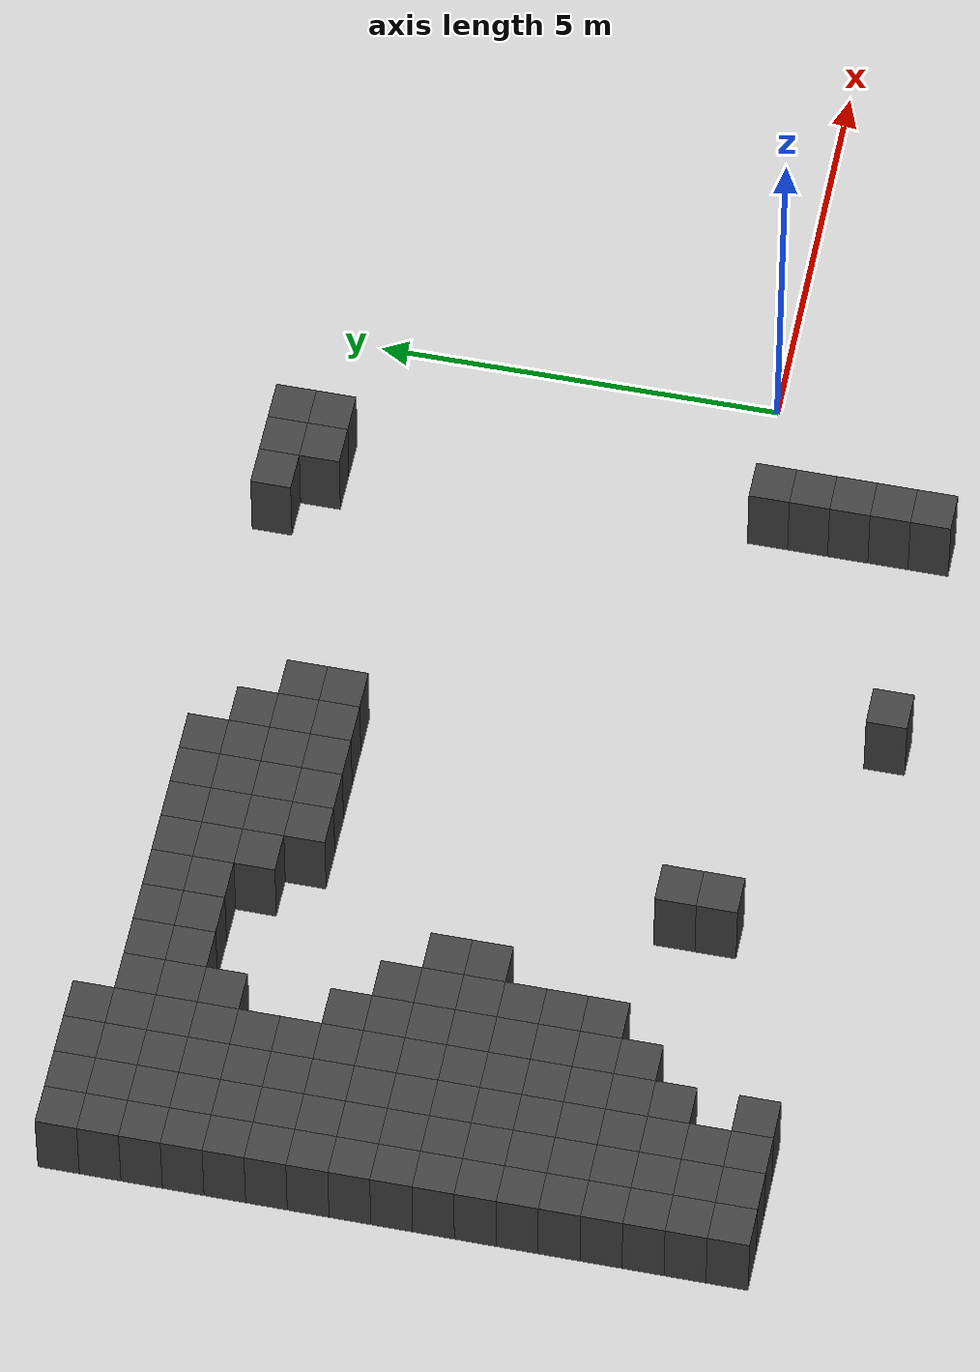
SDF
<sdf version="1.7">
 <world name="map_8658">
  <model name="ground_plane">
   <static>true</static>
   <link name="link">
    <collision name="collision">
     <geometry><plane><normal>0 0 1</normal><size>200 200</size></plane></geometry>
    </collision>
    <visual name="visual">
     <geometry><plane><normal>0 0 1</normal><size>200 200</size></plane></geometry>
     <material><ambient>0.8 0.8 0.8 1</ambient><diffuse>0.8 0.8 0.8 1</diffuse></material>
    </visual>
   </link>
  </model>
  <model name="maze_environment">
   <static>true</static>
   <link name="wall_265">
    <pose>-12.250 6.250 0.500 0 0 0</pose>
    <collision name="col"><geometry><box><size>0.5 0.5 1.0</size></box></geometry></collision>
    <visual name="vis">
     <geometry><box><size>0.5 0.5 1.0</size></box></geometry>
     <material><ambient>0.15 0.15 0.15 1</ambient><diffuse>0.25 0.25 0.25 1</diffuse></material>
    </visual>
   </link>
   <link name="wall_266">
    <pose>-11.750 6.250 0.500 0 0 0</pose>
    <collision name="col"><geometry><box><size>0.5 0.5 1.0</size></box></geometry></collision>
    <visual name="vis">
     <geometry><box><size>0.5 0.5 1.0</size></box></geometry>
     <material><ambient>0.15 0.15 0.15 1</ambient><diffuse>0.25 0.25 0.25 1</diffuse></material>
    </visual>
   </link>
   <link name="wall_267">
    <pose>-11.250 6.250 0.500 0 0 0</pose>
    <collision name="col"><geometry><box><size>0.5 0.5 1.0</size></box></geometry></collision>
    <visual name="vis">
     <geometry><box><size>0.5 0.5 1.0</size></box></geometry>
     <material><ambient>0.15 0.15 0.15 1</ambient><diffuse>0.25 0.25 0.25 1</diffuse></material>
    </visual>
   </link>
   <link name="wall_268">
    <pose>-10.750 6.250 0.500 0 0 0</pose>
    <collision name="col"><geometry><box><size>0.5 0.5 1.0</size></box></geometry></collision>
    <visual name="vis">
     <geometry><box><size>0.5 0.5 1.0</size></box></geometry>
     <material><ambient>0.15 0.15 0.15 1</ambient><diffuse>0.25 0.25 0.25 1</diffuse></material>
    </visual>
   </link>
   <link name="wall_285">
    <pose>-12.250 5.750 0.500 0 0 0</pose>
    <collision name="col"><geometry><box><size>0.5 0.5 1.0</size></box></geometry></collision>
    <visual name="vis">
     <geometry><box><size>0.5 0.5 1.0</size></box></geometry>
     <material><ambient>0.15 0.15 0.15 1</ambient><diffuse>0.25 0.25 0.25 1</diffuse></material>
    </visual>
   </link>
   <link name="wall_286">
    <pose>-11.750 5.750 0.500 0 0 0</pose>
    <collision name="col"><geometry><box><size>0.5 0.5 1.0</size></box></geometry></collision>
    <visual name="vis">
     <geometry><box><size>0.5 0.5 1.0</size></box></geometry>
     <material><ambient>0.15 0.15 0.15 1</ambient><diffuse>0.25 0.25 0.25 1</diffuse></material>
    </visual>
   </link>
   <link name="wall_287">
    <pose>-11.250 5.750 0.500 0 0 0</pose>
    <collision name="col"><geometry><box><size>0.5 0.5 1.0</size></box></geometry></collision>
    <visual name="vis">
     <geometry><box><size>0.5 0.5 1.0</size></box></geometry>
     <material><ambient>0.15 0.15 0.15 1</ambient><diffuse>0.25 0.25 0.25 1</diffuse></material>
    </visual>
   </link>
   <link name="wall_288">
    <pose>-10.750 5.750 0.500 0 0 0</pose>
    <collision name="col"><geometry><box><size>0.5 0.5 1.0</size></box></geometry></collision>
    <visual name="vis">
     <geometry><box><size>0.5 0.5 1.0</size></box></geometry>
     <material><ambient>0.15 0.15 0.15 1</ambient><diffuse>0.25 0.25 0.25 1</diffuse></material>
    </visual>
   </link>
   <link name="wall_289">
    <pose>-10.250 5.750 0.500 0 0 0</pose>
    <collision name="col"><geometry><box><size>0.5 0.5 1.0</size></box></geometry></collision>
    <visual name="vis">
     <geometry><box><size>0.5 0.5 1.0</size></box></geometry>
     <material><ambient>0.15 0.15 0.15 1</ambient><diffuse>0.25 0.25 0.25 1</diffuse></material>
    </visual>
   </link>
   <link name="wall_290">
    <pose>-9.750 5.750 0.500 0 0 0</pose>
    <collision name="col"><geometry><box><size>0.5 0.5 1.0</size></box></geometry></collision>
    <visual name="vis">
     <geometry><box><size>0.5 0.5 1.0</size></box></geometry>
     <material><ambient>0.15 0.15 0.15 1</ambient><diffuse>0.25 0.25 0.25 1</diffuse></material>
    </visual>
   </link>
   <link name="wall_291">
    <pose>-9.250 5.750 0.500 0 0 0</pose>
    <collision name="col"><geometry><box><size>0.5 0.5 1.0</size></box></geometry></collision>
    <visual name="vis">
     <geometry><box><size>0.5 0.5 1.0</size></box></geometry>
     <material><ambient>0.15 0.15 0.15 1</ambient><diffuse>0.25 0.25 0.25 1</diffuse></material>
    </visual>
   </link>
   <link name="wall_292">
    <pose>-8.750 5.750 0.500 0 0 0</pose>
    <collision name="col"><geometry><box><size>0.5 0.5 1.0</size></box></geometry></collision>
    <visual name="vis">
     <geometry><box><size>0.5 0.5 1.0</size></box></geometry>
     <material><ambient>0.15 0.15 0.15 1</ambient><diffuse>0.25 0.25 0.25 1</diffuse></material>
    </visual>
   </link>
   <link name="wall_293">
    <pose>-8.250 5.750 0.500 0 0 0</pose>
    <collision name="col"><geometry><box><size>0.5 0.5 1.0</size></box></geometry></collision>
    <visual name="vis">
     <geometry><box><size>0.5 0.5 1.0</size></box></geometry>
     <material><ambient>0.15 0.15 0.15 1</ambient><diffuse>0.25 0.25 0.25 1</diffuse></material>
    </visual>
   </link>
   <link name="wall_294">
    <pose>-7.750 5.750 0.500 0 0 0</pose>
    <collision name="col"><geometry><box><size>0.5 0.5 1.0</size></box></geometry></collision>
    <visual name="vis">
     <geometry><box><size>0.5 0.5 1.0</size></box></geometry>
     <material><ambient>0.15 0.15 0.15 1</ambient><diffuse>0.25 0.25 0.25 1</diffuse></material>
    </visual>
   </link>
   <link name="wall_295">
    <pose>-7.250 5.750 0.500 0 0 0</pose>
    <collision name="col"><geometry><box><size>0.5 0.5 1.0</size></box></geometry></collision>
    <visual name="vis">
     <geometry><box><size>0.5 0.5 1.0</size></box></geometry>
     <material><ambient>0.15 0.15 0.15 1</ambient><diffuse>0.25 0.25 0.25 1</diffuse></material>
    </visual>
   </link>
   <link name="wall_296">
    <pose>-6.750 5.750 0.500 0 0 0</pose>
    <collision name="col"><geometry><box><size>0.5 0.5 1.0</size></box></geometry></collision>
    <visual name="vis">
     <geometry><box><size>0.5 0.5 1.0</size></box></geometry>
     <material><ambient>0.15 0.15 0.15 1</ambient><diffuse>0.25 0.25 0.25 1</diffuse></material>
    </visual>
   </link>
   <link name="wall_297">
    <pose>-2.750 5.750 0.500 0 0 0</pose>
    <collision name="col"><geometry><box><size>0.5 0.5 1.0</size></box></geometry></collision>
    <visual name="vis">
     <geometry><box><size>0.5 0.5 1.0</size></box></geometry>
     <material><ambient>0.15 0.15 0.15 1</ambient><diffuse>0.25 0.25 0.25 1</diffuse></material>
    </visual>
   </link>
   <link name="wall_298">
    <pose>-2.250 5.750 0.500 0 0 0</pose>
    <collision name="col"><geometry><box><size>0.5 0.5 1.0</size></box></geometry></collision>
    <visual name="vis">
     <geometry><box><size>0.5 0.5 1.0</size></box></geometry>
     <material><ambient>0.15 0.15 0.15 1</ambient><diffuse>0.25 0.25 0.25 1</diffuse></material>
    </visual>
   </link>
   <link name="wall_299">
    <pose>-1.750 5.750 0.500 0 0 0</pose>
    <collision name="col"><geometry><box><size>0.5 0.5 1.0</size></box></geometry></collision>
    <visual name="vis">
     <geometry><box><size>0.5 0.5 1.0</size></box></geometry>
     <material><ambient>0.15 0.15 0.15 1</ambient><diffuse>0.25 0.25 0.25 1</diffuse></material>
    </visual>
   </link>
   <link name="wall_315">
    <pose>-12.250 5.250 0.500 0 0 0</pose>
    <collision name="col"><geometry><box><size>0.5 0.5 1.0</size></box></geometry></collision>
    <visual name="vis">
     <geometry><box><size>0.5 0.5 1.0</size></box></geometry>
     <material><ambient>0.15 0.15 0.15 1</ambient><diffuse>0.25 0.25 0.25 1</diffuse></material>
    </visual>
   </link>
   <link name="wall_316">
    <pose>-11.750 5.250 0.500 0 0 0</pose>
    <collision name="col"><geometry><box><size>0.5 0.5 1.0</size></box></geometry></collision>
    <visual name="vis">
     <geometry><box><size>0.5 0.5 1.0</size></box></geometry>
     <material><ambient>0.15 0.15 0.15 1</ambient><diffuse>0.25 0.25 0.25 1</diffuse></material>
    </visual>
   </link>
   <link name="wall_317">
    <pose>-11.250 5.250 0.500 0 0 0</pose>
    <collision name="col"><geometry><box><size>0.5 0.5 1.0</size></box></geometry></collision>
    <visual name="vis">
     <geometry><box><size>0.5 0.5 1.0</size></box></geometry>
     <material><ambient>0.15 0.15 0.15 1</ambient><diffuse>0.25 0.25 0.25 1</diffuse></material>
    </visual>
   </link>
   <link name="wall_318">
    <pose>-10.750 5.250 0.500 0 0 0</pose>
    <collision name="col"><geometry><box><size>0.5 0.5 1.0</size></box></geometry></collision>
    <visual name="vis">
     <geometry><box><size>0.5 0.5 1.0</size></box></geometry>
     <material><ambient>0.15 0.15 0.15 1</ambient><diffuse>0.25 0.25 0.25 1</diffuse></material>
    </visual>
   </link>
   <link name="wall_319">
    <pose>-10.250 5.250 0.500 0 0 0</pose>
    <collision name="col"><geometry><box><size>0.5 0.5 1.0</size></box></geometry></collision>
    <visual name="vis">
     <geometry><box><size>0.5 0.5 1.0</size></box></geometry>
     <material><ambient>0.15 0.15 0.15 1</ambient><diffuse>0.25 0.25 0.25 1</diffuse></material>
    </visual>
   </link>
   <link name="wall_320">
    <pose>-9.750 5.250 0.500 0 0 0</pose>
    <collision name="col"><geometry><box><size>0.5 0.5 1.0</size></box></geometry></collision>
    <visual name="vis">
     <geometry><box><size>0.5 0.5 1.0</size></box></geometry>
     <material><ambient>0.15 0.15 0.15 1</ambient><diffuse>0.25 0.25 0.25 1</diffuse></material>
    </visual>
   </link>
   <link name="wall_321">
    <pose>-9.250 5.250 0.500 0 0 0</pose>
    <collision name="col"><geometry><box><size>0.5 0.5 1.0</size></box></geometry></collision>
    <visual name="vis">
     <geometry><box><size>0.5 0.5 1.0</size></box></geometry>
     <material><ambient>0.15 0.15 0.15 1</ambient><diffuse>0.25 0.25 0.25 1</diffuse></material>
    </visual>
   </link>
   <link name="wall_322">
    <pose>-8.750 5.250 0.500 0 0 0</pose>
    <collision name="col"><geometry><box><size>0.5 0.5 1.0</size></box></geometry></collision>
    <visual name="vis">
     <geometry><box><size>0.5 0.5 1.0</size></box></geometry>
     <material><ambient>0.15 0.15 0.15 1</ambient><diffuse>0.25 0.25 0.25 1</diffuse></material>
    </visual>
   </link>
   <link name="wall_323">
    <pose>-8.250 5.250 0.500 0 0 0</pose>
    <collision name="col"><geometry><box><size>0.5 0.5 1.0</size></box></geometry></collision>
    <visual name="vis">
     <geometry><box><size>0.5 0.5 1.0</size></box></geometry>
     <material><ambient>0.15 0.15 0.15 1</ambient><diffuse>0.25 0.25 0.25 1</diffuse></material>
    </visual>
   </link>
   <link name="wall_324">
    <pose>-7.750 5.250 0.500 0 0 0</pose>
    <collision name="col"><geometry><box><size>0.5 0.5 1.0</size></box></geometry></collision>
    <visual name="vis">
     <geometry><box><size>0.5 0.5 1.0</size></box></geometry>
     <material><ambient>0.15 0.15 0.15 1</ambient><diffuse>0.25 0.25 0.25 1</diffuse></material>
    </visual>
   </link>
   <link name="wall_325">
    <pose>-7.250 5.250 0.500 0 0 0</pose>
    <collision name="col"><geometry><box><size>0.5 0.5 1.0</size></box></geometry></collision>
    <visual name="vis">
     <geometry><box><size>0.5 0.5 1.0</size></box></geometry>
     <material><ambient>0.15 0.15 0.15 1</ambient><diffuse>0.25 0.25 0.25 1</diffuse></material>
    </visual>
   </link>
   <link name="wall_326">
    <pose>-6.750 5.250 0.500 0 0 0</pose>
    <collision name="col"><geometry><box><size>0.5 0.5 1.0</size></box></geometry></collision>
    <visual name="vis">
     <geometry><box><size>0.5 0.5 1.0</size></box></geometry>
     <material><ambient>0.15 0.15 0.15 1</ambient><diffuse>0.25 0.25 0.25 1</diffuse></material>
    </visual>
   </link>
   <link name="wall_327">
    <pose>-6.250 5.250 0.500 0 0 0</pose>
    <collision name="col"><geometry><box><size>0.5 0.5 1.0</size></box></geometry></collision>
    <visual name="vis">
     <geometry><box><size>0.5 0.5 1.0</size></box></geometry>
     <material><ambient>0.15 0.15 0.15 1</ambient><diffuse>0.25 0.25 0.25 1</diffuse></material>
    </visual>
   </link>
   <link name="wall_328">
    <pose>-2.250 5.250 0.500 0 0 0</pose>
    <collision name="col"><geometry><box><size>0.5 0.5 1.0</size></box></geometry></collision>
    <visual name="vis">
     <geometry><box><size>0.5 0.5 1.0</size></box></geometry>
     <material><ambient>0.15 0.15 0.15 1</ambient><diffuse>0.25 0.25 0.25 1</diffuse></material>
    </visual>
   </link>
   <link name="wall_329">
    <pose>-1.750 5.250 0.500 0 0 0</pose>
    <collision name="col"><geometry><box><size>0.5 0.5 1.0</size></box></geometry></collision>
    <visual name="vis">
     <geometry><box><size>0.5 0.5 1.0</size></box></geometry>
     <material><ambient>0.15 0.15 0.15 1</ambient><diffuse>0.25 0.25 0.25 1</diffuse></material>
    </visual>
   </link>
   <link name="wall_347">
    <pose>-12.250 4.750 0.500 0 0 0</pose>
    <collision name="col"><geometry><box><size>0.5 0.5 1.0</size></box></geometry></collision>
    <visual name="vis">
     <geometry><box><size>0.5 0.5 1.0</size></box></geometry>
     <material><ambient>0.15 0.15 0.15 1</ambient><diffuse>0.25 0.25 0.25 1</diffuse></material>
    </visual>
   </link>
   <link name="wall_348">
    <pose>-11.750 4.750 0.500 0 0 0</pose>
    <collision name="col"><geometry><box><size>0.5 0.5 1.0</size></box></geometry></collision>
    <visual name="vis">
     <geometry><box><size>0.5 0.5 1.0</size></box></geometry>
     <material><ambient>0.15 0.15 0.15 1</ambient><diffuse>0.25 0.25 0.25 1</diffuse></material>
    </visual>
   </link>
   <link name="wall_349">
    <pose>-11.250 4.750 0.500 0 0 0</pose>
    <collision name="col"><geometry><box><size>0.5 0.5 1.0</size></box></geometry></collision>
    <visual name="vis">
     <geometry><box><size>0.5 0.5 1.0</size></box></geometry>
     <material><ambient>0.15 0.15 0.15 1</ambient><diffuse>0.25 0.25 0.25 1</diffuse></material>
    </visual>
   </link>
   <link name="wall_350">
    <pose>-10.750 4.750 0.500 0 0 0</pose>
    <collision name="col"><geometry><box><size>0.5 0.5 1.0</size></box></geometry></collision>
    <visual name="vis">
     <geometry><box><size>0.5 0.5 1.0</size></box></geometry>
     <material><ambient>0.15 0.15 0.15 1</ambient><diffuse>0.25 0.25 0.25 1</diffuse></material>
    </visual>
   </link>
   <link name="wall_351">
    <pose>-10.250 4.750 0.500 0 0 0</pose>
    <collision name="col"><geometry><box><size>0.5 0.5 1.0</size></box></geometry></collision>
    <visual name="vis">
     <geometry><box><size>0.5 0.5 1.0</size></box></geometry>
     <material><ambient>0.15 0.15 0.15 1</ambient><diffuse>0.25 0.25 0.25 1</diffuse></material>
    </visual>
   </link>
   <link name="wall_352">
    <pose>-8.250 4.750 0.500 0 0 0</pose>
    <collision name="col"><geometry><box><size>0.5 0.5 1.0</size></box></geometry></collision>
    <visual name="vis">
     <geometry><box><size>0.5 0.5 1.0</size></box></geometry>
     <material><ambient>0.15 0.15 0.15 1</ambient><diffuse>0.25 0.25 0.25 1</diffuse></material>
    </visual>
   </link>
   <link name="wall_353">
    <pose>-7.750 4.750 0.500 0 0 0</pose>
    <collision name="col"><geometry><box><size>0.5 0.5 1.0</size></box></geometry></collision>
    <visual name="vis">
     <geometry><box><size>0.5 0.5 1.0</size></box></geometry>
     <material><ambient>0.15 0.15 0.15 1</ambient><diffuse>0.25 0.25 0.25 1</diffuse></material>
    </visual>
   </link>
   <link name="wall_354">
    <pose>-7.250 4.750 0.500 0 0 0</pose>
    <collision name="col"><geometry><box><size>0.5 0.5 1.0</size></box></geometry></collision>
    <visual name="vis">
     <geometry><box><size>0.5 0.5 1.0</size></box></geometry>
     <material><ambient>0.15 0.15 0.15 1</ambient><diffuse>0.25 0.25 0.25 1</diffuse></material>
    </visual>
   </link>
   <link name="wall_355">
    <pose>-6.750 4.750 0.500 0 0 0</pose>
    <collision name="col"><geometry><box><size>0.5 0.5 1.0</size></box></geometry></collision>
    <visual name="vis">
     <geometry><box><size>0.5 0.5 1.0</size></box></geometry>
     <material><ambient>0.15 0.15 0.15 1</ambient><diffuse>0.25 0.25 0.25 1</diffuse></material>
    </visual>
   </link>
   <link name="wall_356">
    <pose>-6.250 4.750 0.500 0 0 0</pose>
    <collision name="col"><geometry><box><size>0.5 0.5 1.0</size></box></geometry></collision>
    <visual name="vis">
     <geometry><box><size>0.5 0.5 1.0</size></box></geometry>
     <material><ambient>0.15 0.15 0.15 1</ambient><diffuse>0.25 0.25 0.25 1</diffuse></material>
    </visual>
   </link>
   <link name="wall_357">
    <pose>-5.750 4.750 0.500 0 0 0</pose>
    <collision name="col"><geometry><box><size>0.5 0.5 1.0</size></box></geometry></collision>
    <visual name="vis">
     <geometry><box><size>0.5 0.5 1.0</size></box></geometry>
     <material><ambient>0.15 0.15 0.15 1</ambient><diffuse>0.25 0.25 0.25 1</diffuse></material>
    </visual>
   </link>
   <link name="wall_369">
    <pose>-12.250 4.250 0.500 0 0 0</pose>
    <collision name="col"><geometry><box><size>0.5 0.5 1.0</size></box></geometry></collision>
    <visual name="vis">
     <geometry><box><size>0.5 0.5 1.0</size></box></geometry>
     <material><ambient>0.15 0.15 0.15 1</ambient><diffuse>0.25 0.25 0.25 1</diffuse></material>
    </visual>
   </link>
   <link name="wall_370">
    <pose>-11.750 4.250 0.500 0 0 0</pose>
    <collision name="col"><geometry><box><size>0.5 0.5 1.0</size></box></geometry></collision>
    <visual name="vis">
     <geometry><box><size>0.5 0.5 1.0</size></box></geometry>
     <material><ambient>0.15 0.15 0.15 1</ambient><diffuse>0.25 0.25 0.25 1</diffuse></material>
    </visual>
   </link>
   <link name="wall_371">
    <pose>-11.250 4.250 0.500 0 0 0</pose>
    <collision name="col"><geometry><box><size>0.5 0.5 1.0</size></box></geometry></collision>
    <visual name="vis">
     <geometry><box><size>0.5 0.5 1.0</size></box></geometry>
     <material><ambient>0.15 0.15 0.15 1</ambient><diffuse>0.25 0.25 0.25 1</diffuse></material>
    </visual>
   </link>
   <link name="wall_372">
    <pose>-10.750 4.250 0.500 0 0 0</pose>
    <collision name="col"><geometry><box><size>0.5 0.5 1.0</size></box></geometry></collision>
    <visual name="vis">
     <geometry><box><size>0.5 0.5 1.0</size></box></geometry>
     <material><ambient>0.15 0.15 0.15 1</ambient><diffuse>0.25 0.25 0.25 1</diffuse></material>
    </visual>
   </link>
   <link name="wall_373">
    <pose>-7.750 4.250 0.500 0 0 0</pose>
    <collision name="col"><geometry><box><size>0.5 0.5 1.0</size></box></geometry></collision>
    <visual name="vis">
     <geometry><box><size>0.5 0.5 1.0</size></box></geometry>
     <material><ambient>0.15 0.15 0.15 1</ambient><diffuse>0.25 0.25 0.25 1</diffuse></material>
    </visual>
   </link>
   <link name="wall_374">
    <pose>-7.250 4.250 0.500 0 0 0</pose>
    <collision name="col"><geometry><box><size>0.5 0.5 1.0</size></box></geometry></collision>
    <visual name="vis">
     <geometry><box><size>0.5 0.5 1.0</size></box></geometry>
     <material><ambient>0.15 0.15 0.15 1</ambient><diffuse>0.25 0.25 0.25 1</diffuse></material>
    </visual>
   </link>
   <link name="wall_375">
    <pose>-6.750 4.250 0.500 0 0 0</pose>
    <collision name="col"><geometry><box><size>0.5 0.5 1.0</size></box></geometry></collision>
    <visual name="vis">
     <geometry><box><size>0.5 0.5 1.0</size></box></geometry>
     <material><ambient>0.15 0.15 0.15 1</ambient><diffuse>0.25 0.25 0.25 1</diffuse></material>
    </visual>
   </link>
   <link name="wall_376">
    <pose>-6.250 4.250 0.500 0 0 0</pose>
    <collision name="col"><geometry><box><size>0.5 0.5 1.0</size></box></geometry></collision>
    <visual name="vis">
     <geometry><box><size>0.5 0.5 1.0</size></box></geometry>
     <material><ambient>0.15 0.15 0.15 1</ambient><diffuse>0.25 0.25 0.25 1</diffuse></material>
    </visual>
   </link>
   <link name="wall_377">
    <pose>-5.750 4.250 0.500 0 0 0</pose>
    <collision name="col"><geometry><box><size>0.5 0.5 1.0</size></box></geometry></collision>
    <visual name="vis">
     <geometry><box><size>0.5 0.5 1.0</size></box></geometry>
     <material><ambient>0.15 0.15 0.15 1</ambient><diffuse>0.25 0.25 0.25 1</diffuse></material>
    </visual>
   </link>
   <link name="wall_384">
    <pose>-12.250 3.750 0.500 0 0 0</pose>
    <collision name="col"><geometry><box><size>0.5 0.5 1.0</size></box></geometry></collision>
    <visual name="vis">
     <geometry><box><size>0.5 0.5 1.0</size></box></geometry>
     <material><ambient>0.15 0.15 0.15 1</ambient><diffuse>0.25 0.25 0.25 1</diffuse></material>
    </visual>
   </link>
   <link name="wall_385">
    <pose>-11.750 3.750 0.500 0 0 0</pose>
    <collision name="col"><geometry><box><size>0.5 0.5 1.0</size></box></geometry></collision>
    <visual name="vis">
     <geometry><box><size>0.5 0.5 1.0</size></box></geometry>
     <material><ambient>0.15 0.15 0.15 1</ambient><diffuse>0.25 0.25 0.25 1</diffuse></material>
    </visual>
   </link>
   <link name="wall_386">
    <pose>-11.250 3.750 0.500 0 0 0</pose>
    <collision name="col"><geometry><box><size>0.5 0.5 1.0</size></box></geometry></collision>
    <visual name="vis">
     <geometry><box><size>0.5 0.5 1.0</size></box></geometry>
     <material><ambient>0.15 0.15 0.15 1</ambient><diffuse>0.25 0.25 0.25 1</diffuse></material>
    </visual>
   </link>
   <link name="wall_387">
    <pose>-10.750 3.750 0.500 0 0 0</pose>
    <collision name="col"><geometry><box><size>0.5 0.5 1.0</size></box></geometry></collision>
    <visual name="vis">
     <geometry><box><size>0.5 0.5 1.0</size></box></geometry>
     <material><ambient>0.15 0.15 0.15 1</ambient><diffuse>0.25 0.25 0.25 1</diffuse></material>
    </visual>
   </link>
   <link name="wall_392">
    <pose>-12.250 3.250 0.500 0 0 0</pose>
    <collision name="col"><geometry><box><size>0.5 0.5 1.0</size></box></geometry></collision>
    <visual name="vis">
     <geometry><box><size>0.5 0.5 1.0</size></box></geometry>
     <material><ambient>0.15 0.15 0.15 1</ambient><diffuse>0.25 0.25 0.25 1</diffuse></material>
    </visual>
   </link>
   <link name="wall_393">
    <pose>-11.750 3.250 0.500 0 0 0</pose>
    <collision name="col"><geometry><box><size>0.5 0.5 1.0</size></box></geometry></collision>
    <visual name="vis">
     <geometry><box><size>0.5 0.5 1.0</size></box></geometry>
     <material><ambient>0.15 0.15 0.15 1</ambient><diffuse>0.25 0.25 0.25 1</diffuse></material>
    </visual>
   </link>
   <link name="wall_394">
    <pose>-11.250 3.250 0.500 0 0 0</pose>
    <collision name="col"><geometry><box><size>0.5 0.5 1.0</size></box></geometry></collision>
    <visual name="vis">
     <geometry><box><size>0.5 0.5 1.0</size></box></geometry>
     <material><ambient>0.15 0.15 0.15 1</ambient><diffuse>0.25 0.25 0.25 1</diffuse></material>
    </visual>
   </link>
   <link name="wall_395">
    <pose>-10.750 3.250 0.500 0 0 0</pose>
    <collision name="col"><geometry><box><size>0.5 0.5 1.0</size></box></geometry></collision>
    <visual name="vis">
     <geometry><box><size>0.5 0.5 1.0</size></box></geometry>
     <material><ambient>0.15 0.15 0.15 1</ambient><diffuse>0.25 0.25 0.25 1</diffuse></material>
    </visual>
   </link>
   <link name="wall_396">
    <pose>-10.250 3.250 0.500 0 0 0</pose>
    <collision name="col"><geometry><box><size>0.5 0.5 1.0</size></box></geometry></collision>
    <visual name="vis">
     <geometry><box><size>0.5 0.5 1.0</size></box></geometry>
     <material><ambient>0.15 0.15 0.15 1</ambient><diffuse>0.25 0.25 0.25 1</diffuse></material>
    </visual>
   </link>
   <link name="wall_402">
    <pose>-12.250 2.750 0.500 0 0 0</pose>
    <collision name="col"><geometry><box><size>0.5 0.5 1.0</size></box></geometry></collision>
    <visual name="vis">
     <geometry><box><size>0.5 0.5 1.0</size></box></geometry>
     <material><ambient>0.15 0.15 0.15 1</ambient><diffuse>0.25 0.25 0.25 1</diffuse></material>
    </visual>
   </link>
   <link name="wall_403">
    <pose>-11.750 2.750 0.500 0 0 0</pose>
    <collision name="col"><geometry><box><size>0.5 0.5 1.0</size></box></geometry></collision>
    <visual name="vis">
     <geometry><box><size>0.5 0.5 1.0</size></box></geometry>
     <material><ambient>0.15 0.15 0.15 1</ambient><diffuse>0.25 0.25 0.25 1</diffuse></material>
    </visual>
   </link>
   <link name="wall_404">
    <pose>-11.250 2.750 0.500 0 0 0</pose>
    <collision name="col"><geometry><box><size>0.5 0.5 1.0</size></box></geometry></collision>
    <visual name="vis">
     <geometry><box><size>0.5 0.5 1.0</size></box></geometry>
     <material><ambient>0.15 0.15 0.15 1</ambient><diffuse>0.25 0.25 0.25 1</diffuse></material>
    </visual>
   </link>
   <link name="wall_405">
    <pose>-10.750 2.750 0.500 0 0 0</pose>
    <collision name="col"><geometry><box><size>0.5 0.5 1.0</size></box></geometry></collision>
    <visual name="vis">
     <geometry><box><size>0.5 0.5 1.0</size></box></geometry>
     <material><ambient>0.15 0.15 0.15 1</ambient><diffuse>0.25 0.25 0.25 1</diffuse></material>
    </visual>
   </link>
   <link name="wall_406">
    <pose>-10.250 2.750 0.500 0 0 0</pose>
    <collision name="col"><geometry><box><size>0.5 0.5 1.0</size></box></geometry></collision>
    <visual name="vis">
     <geometry><box><size>0.5 0.5 1.0</size></box></geometry>
     <material><ambient>0.15 0.15 0.15 1</ambient><diffuse>0.25 0.25 0.25 1</diffuse></material>
    </visual>
   </link>
   <link name="wall_407">
    <pose>-9.750 2.750 0.500 0 0 0</pose>
    <collision name="col"><geometry><box><size>0.5 0.5 1.0</size></box></geometry></collision>
    <visual name="vis">
     <geometry><box><size>0.5 0.5 1.0</size></box></geometry>
     <material><ambient>0.15 0.15 0.15 1</ambient><diffuse>0.25 0.25 0.25 1</diffuse></material>
    </visual>
   </link>
   <link name="wall_417">
    <pose>-12.250 2.250 0.500 0 0 0</pose>
    <collision name="col"><geometry><box><size>0.5 0.5 1.0</size></box></geometry></collision>
    <visual name="vis">
     <geometry><box><size>0.5 0.5 1.0</size></box></geometry>
     <material><ambient>0.15 0.15 0.15 1</ambient><diffuse>0.25 0.25 0.25 1</diffuse></material>
    </visual>
   </link>
   <link name="wall_418">
    <pose>-11.750 2.250 0.500 0 0 0</pose>
    <collision name="col"><geometry><box><size>0.5 0.5 1.0</size></box></geometry></collision>
    <visual name="vis">
     <geometry><box><size>0.5 0.5 1.0</size></box></geometry>
     <material><ambient>0.15 0.15 0.15 1</ambient><diffuse>0.25 0.25 0.25 1</diffuse></material>
    </visual>
   </link>
   <link name="wall_419">
    <pose>-11.250 2.250 0.500 0 0 0</pose>
    <collision name="col"><geometry><box><size>0.5 0.5 1.0</size></box></geometry></collision>
    <visual name="vis">
     <geometry><box><size>0.5 0.5 1.0</size></box></geometry>
     <material><ambient>0.15 0.15 0.15 1</ambient><diffuse>0.25 0.25 0.25 1</diffuse></material>
    </visual>
   </link>
   <link name="wall_420">
    <pose>-10.750 2.250 0.500 0 0 0</pose>
    <collision name="col"><geometry><box><size>0.5 0.5 1.0</size></box></geometry></collision>
    <visual name="vis">
     <geometry><box><size>0.5 0.5 1.0</size></box></geometry>
     <material><ambient>0.15 0.15 0.15 1</ambient><diffuse>0.25 0.25 0.25 1</diffuse></material>
    </visual>
   </link>
   <link name="wall_421">
    <pose>-10.250 2.250 0.500 0 0 0</pose>
    <collision name="col"><geometry><box><size>0.5 0.5 1.0</size></box></geometry></collision>
    <visual name="vis">
     <geometry><box><size>0.5 0.5 1.0</size></box></geometry>
     <material><ambient>0.15 0.15 0.15 1</ambient><diffuse>0.25 0.25 0.25 1</diffuse></material>
    </visual>
   </link>
   <link name="wall_422">
    <pose>-9.750 2.250 0.500 0 0 0</pose>
    <collision name="col"><geometry><box><size>0.5 0.5 1.0</size></box></geometry></collision>
    <visual name="vis">
     <geometry><box><size>0.5 0.5 1.0</size></box></geometry>
     <material><ambient>0.15 0.15 0.15 1</ambient><diffuse>0.25 0.25 0.25 1</diffuse></material>
    </visual>
   </link>
   <link name="wall_423">
    <pose>-9.250 2.250 0.500 0 0 0</pose>
    <collision name="col"><geometry><box><size>0.5 0.5 1.0</size></box></geometry></collision>
    <visual name="vis">
     <geometry><box><size>0.5 0.5 1.0</size></box></geometry>
     <material><ambient>0.15 0.15 0.15 1</ambient><diffuse>0.25 0.25 0.25 1</diffuse></material>
    </visual>
   </link>
   <link name="wall_436">
    <pose>-12.250 1.750 0.500 0 0 0</pose>
    <collision name="col"><geometry><box><size>0.5 0.5 1.0</size></box></geometry></collision>
    <visual name="vis">
     <geometry><box><size>0.5 0.5 1.0</size></box></geometry>
     <material><ambient>0.15 0.15 0.15 1</ambient><diffuse>0.25 0.25 0.25 1</diffuse></material>
    </visual>
   </link>
   <link name="wall_437">
    <pose>-11.750 1.750 0.500 0 0 0</pose>
    <collision name="col"><geometry><box><size>0.5 0.5 1.0</size></box></geometry></collision>
    <visual name="vis">
     <geometry><box><size>0.5 0.5 1.0</size></box></geometry>
     <material><ambient>0.15 0.15 0.15 1</ambient><diffuse>0.25 0.25 0.25 1</diffuse></material>
    </visual>
   </link>
   <link name="wall_438">
    <pose>-11.250 1.750 0.500 0 0 0</pose>
    <collision name="col"><geometry><box><size>0.5 0.5 1.0</size></box></geometry></collision>
    <visual name="vis">
     <geometry><box><size>0.5 0.5 1.0</size></box></geometry>
     <material><ambient>0.15 0.15 0.15 1</ambient><diffuse>0.25 0.25 0.25 1</diffuse></material>
    </visual>
   </link>
   <link name="wall_439">
    <pose>-10.750 1.750 0.500 0 0 0</pose>
    <collision name="col"><geometry><box><size>0.5 0.5 1.0</size></box></geometry></collision>
    <visual name="vis">
     <geometry><box><size>0.5 0.5 1.0</size></box></geometry>
     <material><ambient>0.15 0.15 0.15 1</ambient><diffuse>0.25 0.25 0.25 1</diffuse></material>
    </visual>
   </link>
   <link name="wall_440">
    <pose>-10.250 1.750 0.500 0 0 0</pose>
    <collision name="col"><geometry><box><size>0.5 0.5 1.0</size></box></geometry></collision>
    <visual name="vis">
     <geometry><box><size>0.5 0.5 1.0</size></box></geometry>
     <material><ambient>0.15 0.15 0.15 1</ambient><diffuse>0.25 0.25 0.25 1</diffuse></material>
    </visual>
   </link>
   <link name="wall_441">
    <pose>-9.750 1.750 0.500 0 0 0</pose>
    <collision name="col"><geometry><box><size>0.5 0.5 1.0</size></box></geometry></collision>
    <visual name="vis">
     <geometry><box><size>0.5 0.5 1.0</size></box></geometry>
     <material><ambient>0.15 0.15 0.15 1</ambient><diffuse>0.25 0.25 0.25 1</diffuse></material>
    </visual>
   </link>
   <link name="wall_442">
    <pose>-9.250 1.750 0.500 0 0 0</pose>
    <collision name="col"><geometry><box><size>0.5 0.5 1.0</size></box></geometry></collision>
    <visual name="vis">
     <geometry><box><size>0.5 0.5 1.0</size></box></geometry>
     <material><ambient>0.15 0.15 0.15 1</ambient><diffuse>0.25 0.25 0.25 1</diffuse></material>
    </visual>
   </link>
   <link name="wall_453">
    <pose>-12.250 1.250 0.500 0 0 0</pose>
    <collision name="col"><geometry><box><size>0.5 0.5 1.0</size></box></geometry></collision>
    <visual name="vis">
     <geometry><box><size>0.5 0.5 1.0</size></box></geometry>
     <material><ambient>0.15 0.15 0.15 1</ambient><diffuse>0.25 0.25 0.25 1</diffuse></material>
    </visual>
   </link>
   <link name="wall_454">
    <pose>-11.750 1.250 0.500 0 0 0</pose>
    <collision name="col"><geometry><box><size>0.5 0.5 1.0</size></box></geometry></collision>
    <visual name="vis">
     <geometry><box><size>0.5 0.5 1.0</size></box></geometry>
     <material><ambient>0.15 0.15 0.15 1</ambient><diffuse>0.25 0.25 0.25 1</diffuse></material>
    </visual>
   </link>
   <link name="wall_455">
    <pose>-11.250 1.250 0.500 0 0 0</pose>
    <collision name="col"><geometry><box><size>0.5 0.5 1.0</size></box></geometry></collision>
    <visual name="vis">
     <geometry><box><size>0.5 0.5 1.0</size></box></geometry>
     <material><ambient>0.15 0.15 0.15 1</ambient><diffuse>0.25 0.25 0.25 1</diffuse></material>
    </visual>
   </link>
   <link name="wall_456">
    <pose>-10.750 1.250 0.500 0 0 0</pose>
    <collision name="col"><geometry><box><size>0.5 0.5 1.0</size></box></geometry></collision>
    <visual name="vis">
     <geometry><box><size>0.5 0.5 1.0</size></box></geometry>
     <material><ambient>0.15 0.15 0.15 1</ambient><diffuse>0.25 0.25 0.25 1</diffuse></material>
    </visual>
   </link>
   <link name="wall_457">
    <pose>-10.250 1.250 0.500 0 0 0</pose>
    <collision name="col"><geometry><box><size>0.5 0.5 1.0</size></box></geometry></collision>
    <visual name="vis">
     <geometry><box><size>0.5 0.5 1.0</size></box></geometry>
     <material><ambient>0.15 0.15 0.15 1</ambient><diffuse>0.25 0.25 0.25 1</diffuse></material>
    </visual>
   </link>
   <link name="wall_458">
    <pose>-9.750 1.250 0.500 0 0 0</pose>
    <collision name="col"><geometry><box><size>0.5 0.5 1.0</size></box></geometry></collision>
    <visual name="vis">
     <geometry><box><size>0.5 0.5 1.0</size></box></geometry>
     <material><ambient>0.15 0.15 0.15 1</ambient><diffuse>0.25 0.25 0.25 1</diffuse></material>
    </visual>
   </link>
   <link name="wall_468">
    <pose>-12.250 0.750 0.500 0 0 0</pose>
    <collision name="col"><geometry><box><size>0.5 0.5 1.0</size></box></geometry></collision>
    <visual name="vis">
     <geometry><box><size>0.5 0.5 1.0</size></box></geometry>
     <material><ambient>0.15 0.15 0.15 1</ambient><diffuse>0.25 0.25 0.25 1</diffuse></material>
    </visual>
   </link>
   <link name="wall_469">
    <pose>-11.750 0.750 0.500 0 0 0</pose>
    <collision name="col"><geometry><box><size>0.5 0.5 1.0</size></box></geometry></collision>
    <visual name="vis">
     <geometry><box><size>0.5 0.5 1.0</size></box></geometry>
     <material><ambient>0.15 0.15 0.15 1</ambient><diffuse>0.25 0.25 0.25 1</diffuse></material>
    </visual>
   </link>
   <link name="wall_470">
    <pose>-11.250 0.750 0.500 0 0 0</pose>
    <collision name="col"><geometry><box><size>0.5 0.5 1.0</size></box></geometry></collision>
    <visual name="vis">
     <geometry><box><size>0.5 0.5 1.0</size></box></geometry>
     <material><ambient>0.15 0.15 0.15 1</ambient><diffuse>0.25 0.25 0.25 1</diffuse></material>
    </visual>
   </link>
   <link name="wall_471">
    <pose>-10.750 0.750 0.500 0 0 0</pose>
    <collision name="col"><geometry><box><size>0.5 0.5 1.0</size></box></geometry></collision>
    <visual name="vis">
     <geometry><box><size>0.5 0.5 1.0</size></box></geometry>
     <material><ambient>0.15 0.15 0.15 1</ambient><diffuse>0.25 0.25 0.25 1</diffuse></material>
    </visual>
   </link>
   <link name="wall_472">
    <pose>-10.250 0.750 0.500 0 0 0</pose>
    <collision name="col"><geometry><box><size>0.5 0.5 1.0</size></box></geometry></collision>
    <visual name="vis">
     <geometry><box><size>0.5 0.5 1.0</size></box></geometry>
     <material><ambient>0.15 0.15 0.15 1</ambient><diffuse>0.25 0.25 0.25 1</diffuse></material>
    </visual>
   </link>
   <link name="wall_473">
    <pose>-9.750 0.750 0.500 0 0 0</pose>
    <collision name="col"><geometry><box><size>0.5 0.5 1.0</size></box></geometry></collision>
    <visual name="vis">
     <geometry><box><size>0.5 0.5 1.0</size></box></geometry>
     <material><ambient>0.15 0.15 0.15 1</ambient><diffuse>0.25 0.25 0.25 1</diffuse></material>
    </visual>
   </link>
   <link name="wall_482">
    <pose>-12.250 0.250 0.500 0 0 0</pose>
    <collision name="col"><geometry><box><size>0.5 0.5 1.0</size></box></geometry></collision>
    <visual name="vis">
     <geometry><box><size>0.5 0.5 1.0</size></box></geometry>
     <material><ambient>0.15 0.15 0.15 1</ambient><diffuse>0.25 0.25 0.25 1</diffuse></material>
    </visual>
   </link>
   <link name="wall_483">
    <pose>-11.750 0.250 0.500 0 0 0</pose>
    <collision name="col"><geometry><box><size>0.5 0.5 1.0</size></box></geometry></collision>
    <visual name="vis">
     <geometry><box><size>0.5 0.5 1.0</size></box></geometry>
     <material><ambient>0.15 0.15 0.15 1</ambient><diffuse>0.25 0.25 0.25 1</diffuse></material>
    </visual>
   </link>
   <link name="wall_484">
    <pose>-11.250 0.250 0.500 0 0 0</pose>
    <collision name="col"><geometry><box><size>0.5 0.5 1.0</size></box></geometry></collision>
    <visual name="vis">
     <geometry><box><size>0.5 0.5 1.0</size></box></geometry>
     <material><ambient>0.15 0.15 0.15 1</ambient><diffuse>0.25 0.25 0.25 1</diffuse></material>
    </visual>
   </link>
   <link name="wall_485">
    <pose>-10.750 0.250 0.500 0 0 0</pose>
    <collision name="col"><geometry><box><size>0.5 0.5 1.0</size></box></geometry></collision>
    <visual name="vis">
     <geometry><box><size>0.5 0.5 1.0</size></box></geometry>
     <material><ambient>0.15 0.15 0.15 1</ambient><diffuse>0.25 0.25 0.25 1</diffuse></material>
    </visual>
   </link>
   <link name="wall_486">
    <pose>-10.250 0.250 0.500 0 0 0</pose>
    <collision name="col"><geometry><box><size>0.5 0.5 1.0</size></box></geometry></collision>
    <visual name="vis">
     <geometry><box><size>0.5 0.5 1.0</size></box></geometry>
     <material><ambient>0.15 0.15 0.15 1</ambient><diffuse>0.25 0.25 0.25 1</diffuse></material>
    </visual>
   </link>
   <link name="wall_487">
    <pose>-9.750 0.250 0.500 0 0 0</pose>
    <collision name="col"><geometry><box><size>0.5 0.5 1.0</size></box></geometry></collision>
    <visual name="vis">
     <geometry><box><size>0.5 0.5 1.0</size></box></geometry>
     <material><ambient>0.15 0.15 0.15 1</ambient><diffuse>0.25 0.25 0.25 1</diffuse></material>
    </visual>
   </link>
   <link name="wall_498">
    <pose>-12.250 -0.250 0.500 0 0 0</pose>
    <collision name="col"><geometry><box><size>0.5 0.5 1.0</size></box></geometry></collision>
    <visual name="vis">
     <geometry><box><size>0.5 0.5 1.0</size></box></geometry>
     <material><ambient>0.15 0.15 0.15 1</ambient><diffuse>0.25 0.25 0.25 1</diffuse></material>
    </visual>
   </link>
   <link name="wall_499">
    <pose>-11.750 -0.250 0.500 0 0 0</pose>
    <collision name="col"><geometry><box><size>0.5 0.5 1.0</size></box></geometry></collision>
    <visual name="vis">
     <geometry><box><size>0.5 0.5 1.0</size></box></geometry>
     <material><ambient>0.15 0.15 0.15 1</ambient><diffuse>0.25 0.25 0.25 1</diffuse></material>
    </visual>
   </link>
   <link name="wall_500">
    <pose>-11.250 -0.250 0.500 0 0 0</pose>
    <collision name="col"><geometry><box><size>0.5 0.5 1.0</size></box></geometry></collision>
    <visual name="vis">
     <geometry><box><size>0.5 0.5 1.0</size></box></geometry>
     <material><ambient>0.15 0.15 0.15 1</ambient><diffuse>0.25 0.25 0.25 1</diffuse></material>
    </visual>
   </link>
   <link name="wall_501">
    <pose>-10.750 -0.250 0.500 0 0 0</pose>
    <collision name="col"><geometry><box><size>0.5 0.5 1.0</size></box></geometry></collision>
    <visual name="vis">
     <geometry><box><size>0.5 0.5 1.0</size></box></geometry>
     <material><ambient>0.15 0.15 0.15 1</ambient><diffuse>0.25 0.25 0.25 1</diffuse></material>
    </visual>
   </link>
   <link name="wall_502">
    <pose>-10.250 -0.250 0.500 0 0 0</pose>
    <collision name="col"><geometry><box><size>0.5 0.5 1.0</size></box></geometry></collision>
    <visual name="vis">
     <geometry><box><size>0.5 0.5 1.0</size></box></geometry>
     <material><ambient>0.15 0.15 0.15 1</ambient><diffuse>0.25 0.25 0.25 1</diffuse></material>
    </visual>
   </link>
   <link name="wall_503">
    <pose>-7.750 -0.250 0.500 0 0 0</pose>
    <collision name="col"><geometry><box><size>0.5 0.5 1.0</size></box></geometry></collision>
    <visual name="vis">
     <geometry><box><size>0.5 0.5 1.0</size></box></geometry>
     <material><ambient>0.15 0.15 0.15 1</ambient><diffuse>0.25 0.25 0.25 1</diffuse></material>
    </visual>
   </link>
   <link name="wall_504">
    <pose>-1.750 -0.250 0.500 0 0 0</pose>
    <collision name="col"><geometry><box><size>0.5 0.5 1.0</size></box></geometry></collision>
    <visual name="vis">
     <geometry><box><size>0.5 0.5 1.0</size></box></geometry>
     <material><ambient>0.15 0.15 0.15 1</ambient><diffuse>0.25 0.25 0.25 1</diffuse></material>
    </visual>
   </link>
   <link name="wall_520">
    <pose>-12.250 -0.750 0.500 0 0 0</pose>
    <collision name="col"><geometry><box><size>0.5 0.5 1.0</size></box></geometry></collision>
    <visual name="vis">
     <geometry><box><size>0.5 0.5 1.0</size></box></geometry>
     <material><ambient>0.15 0.15 0.15 1</ambient><diffuse>0.25 0.25 0.25 1</diffuse></material>
    </visual>
   </link>
   <link name="wall_521">
    <pose>-11.750 -0.750 0.500 0 0 0</pose>
    <collision name="col"><geometry><box><size>0.5 0.5 1.0</size></box></geometry></collision>
    <visual name="vis">
     <geometry><box><size>0.5 0.5 1.0</size></box></geometry>
     <material><ambient>0.15 0.15 0.15 1</ambient><diffuse>0.25 0.25 0.25 1</diffuse></material>
    </visual>
   </link>
   <link name="wall_522">
    <pose>-11.250 -0.750 0.500 0 0 0</pose>
    <collision name="col"><geometry><box><size>0.5 0.5 1.0</size></box></geometry></collision>
    <visual name="vis">
     <geometry><box><size>0.5 0.5 1.0</size></box></geometry>
     <material><ambient>0.15 0.15 0.15 1</ambient><diffuse>0.25 0.25 0.25 1</diffuse></material>
    </visual>
   </link>
   <link name="wall_523">
    <pose>-10.750 -0.750 0.500 0 0 0</pose>
    <collision name="col"><geometry><box><size>0.5 0.5 1.0</size></box></geometry></collision>
    <visual name="vis">
     <geometry><box><size>0.5 0.5 1.0</size></box></geometry>
     <material><ambient>0.15 0.15 0.15 1</ambient><diffuse>0.25 0.25 0.25 1</diffuse></material>
    </visual>
   </link>
   <link name="wall_524">
    <pose>-7.750 -0.750 0.500 0 0 0</pose>
    <collision name="col"><geometry><box><size>0.5 0.5 1.0</size></box></geometry></collision>
    <visual name="vis">
     <geometry><box><size>0.5 0.5 1.0</size></box></geometry>
     <material><ambient>0.15 0.15 0.15 1</ambient><diffuse>0.25 0.25 0.25 1</diffuse></material>
    </visual>
   </link>
   <link name="wall_525">
    <pose>-1.750 -0.750 0.500 0 0 0</pose>
    <collision name="col"><geometry><box><size>0.5 0.5 1.0</size></box></geometry></collision>
    <visual name="vis">
     <geometry><box><size>0.5 0.5 1.0</size></box></geometry>
     <material><ambient>0.15 0.15 0.15 1</ambient><diffuse>0.25 0.25 0.25 1</diffuse></material>
    </visual>
   </link>
   <link name="wall_541">
    <pose>-12.250 -1.250 0.500 0 0 0</pose>
    <collision name="col"><geometry><box><size>0.5 0.5 1.0</size></box></geometry></collision>
    <visual name="vis">
     <geometry><box><size>0.5 0.5 1.0</size></box></geometry>
     <material><ambient>0.15 0.15 0.15 1</ambient><diffuse>0.25 0.25 0.25 1</diffuse></material>
    </visual>
   </link>
   <link name="wall_542">
    <pose>-11.750 -1.250 0.500 0 0 0</pose>
    <collision name="col"><geometry><box><size>0.5 0.5 1.0</size></box></geometry></collision>
    <visual name="vis">
     <geometry><box><size>0.5 0.5 1.0</size></box></geometry>
     <material><ambient>0.15 0.15 0.15 1</ambient><diffuse>0.25 0.25 0.25 1</diffuse></material>
    </visual>
   </link>
   <link name="wall_543">
    <pose>-11.250 -1.250 0.500 0 0 0</pose>
    <collision name="col"><geometry><box><size>0.5 0.5 1.0</size></box></geometry></collision>
    <visual name="vis">
     <geometry><box><size>0.5 0.5 1.0</size></box></geometry>
     <material><ambient>0.15 0.15 0.15 1</ambient><diffuse>0.25 0.25 0.25 1</diffuse></material>
    </visual>
   </link>
   <link name="wall_544">
    <pose>-1.750 -1.250 0.500 0 0 0</pose>
    <collision name="col"><geometry><box><size>0.5 0.5 1.0</size></box></geometry></collision>
    <visual name="vis">
     <geometry><box><size>0.5 0.5 1.0</size></box></geometry>
     <material><ambient>0.15 0.15 0.15 1</ambient><diffuse>0.25 0.25 0.25 1</diffuse></material>
    </visual>
   </link>
   <link name="wall_557">
    <pose>-12.250 -1.750 0.500 0 0 0</pose>
    <collision name="col"><geometry><box><size>0.5 0.5 1.0</size></box></geometry></collision>
    <visual name="vis">
     <geometry><box><size>0.5 0.5 1.0</size></box></geometry>
     <material><ambient>0.15 0.15 0.15 1</ambient><diffuse>0.25 0.25 0.25 1</diffuse></material>
    </visual>
   </link>
   <link name="wall_558">
    <pose>-11.750 -1.750 0.500 0 0 0</pose>
    <collision name="col"><geometry><box><size>0.5 0.5 1.0</size></box></geometry></collision>
    <visual name="vis">
     <geometry><box><size>0.5 0.5 1.0</size></box></geometry>
     <material><ambient>0.15 0.15 0.15 1</ambient><diffuse>0.25 0.25 0.25 1</diffuse></material>
    </visual>
   </link>
   <link name="wall_559">
    <pose>-11.250 -1.750 0.500 0 0 0</pose>
    <collision name="col"><geometry><box><size>0.5 0.5 1.0</size></box></geometry></collision>
    <visual name="vis">
     <geometry><box><size>0.5 0.5 1.0</size></box></geometry>
     <material><ambient>0.15 0.15 0.15 1</ambient><diffuse>0.25 0.25 0.25 1</diffuse></material>
    </visual>
   </link>
   <link name="wall_560">
    <pose>-10.750 -1.750 0.500 0 0 0</pose>
    <collision name="col"><geometry><box><size>0.5 0.5 1.0</size></box></geometry></collision>
    <visual name="vis">
     <geometry><box><size>0.5 0.5 1.0</size></box></geometry>
     <material><ambient>0.15 0.15 0.15 1</ambient><diffuse>0.25 0.25 0.25 1</diffuse></material>
    </visual>
   </link>
   <link name="wall_561">
    <pose>-1.750 -1.750 0.500 0 0 0</pose>
    <collision name="col"><geometry><box><size>0.5 0.5 1.0</size></box></geometry></collision>
    <visual name="vis">
     <geometry><box><size>0.5 0.5 1.0</size></box></geometry>
     <material><ambient>0.15 0.15 0.15 1</ambient><diffuse>0.25 0.25 0.25 1</diffuse></material>
    </visual>
   </link>
   <link name="wall_580">
    <pose>-4.750 -2.250 0.500 0 0 0</pose>
    <collision name="col"><geometry><box><size>0.5 0.5 1.0</size></box></geometry></collision>
    <visual name="vis">
     <geometry><box><size>0.5 0.5 1.0</size></box></geometry>
     <material><ambient>0.15 0.15 0.15 1</ambient><diffuse>0.25 0.25 0.25 1</diffuse></material>
    </visual>
   </link>
   <link name="wall_581">
    <pose>-1.750 -2.250 0.500 0 0 0</pose>
    <collision name="col"><geometry><box><size>0.5 0.5 1.0</size></box></geometry></collision>
    <visual name="vis">
     <geometry><box><size>0.5 0.5 1.0</size></box></geometry>
     <material><ambient>0.15 0.15 0.15 1</ambient><diffuse>0.25 0.25 0.25 1</diffuse></material>
    </visual>
   </link>
  </model>
 </world>
</sdf>
